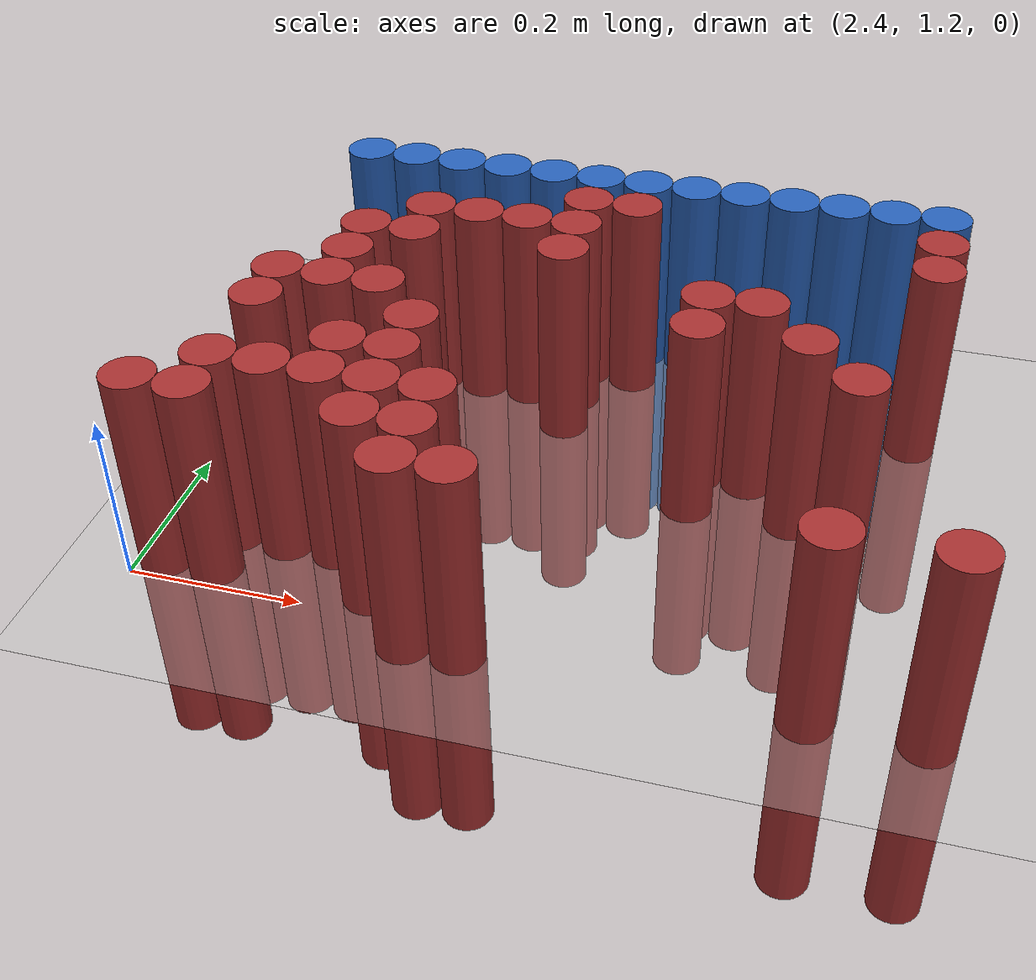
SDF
<sdf version="1.6">
 <world name="default">
  <model name="ground_plane">
   <static>1</static>
   <link name="link">
    <collision name="collision">
     <geometry><plane><normal>0 0 1</normal><size>100 100</size></plane></geometry>
     <surface><friction><ode><mu>100</mu><mu2>50</mu2></ode></friction></surface>
    </collision>
    <visual name="visual">
     <cast_shadows>0</cast_shadows>
     <geometry><plane><normal>0 0 1</normal><size>100 100</size></plane></geometry>
     <material>
      <script><uri>file://media/materials/scripts/gazebo.material</uri><name>Gazebo/Grey</name></script>
     </material>
    </visual>
   </link>
  </model>
  <model name="unit_cylinder_102">
   <static>1</static>
   <pose>2.490000 1.770000 0.000000 0.000000 0.000000 0.000000</pose>
   <link name="link">
    <inertial>
     <mass>1</mass>
     <inertia><ixx>0.145833</ixx><ixy>0</ixy><ixz>0</ixz><iyy>0.145833</iyy><iyz>0</iyz><izz>0.125</izz></inertia>
    </inertial>
    <collision name="collision">
     <geometry><cylinder><radius>0.030000</radius><length>0.5</length></cylinder></geometry>
    </collision>
    <visual name="visual">
     <geometry><cylinder><radius>0.030000</radius><length>0.5</length></cylinder></geometry>
     <material>
      <ambient>0.152000 0.379000 0.720000 1</ambient>
      <diffuse>0.152000 0.379000 0.720000 1</diffuse>
     </material>
     <material>
      <script><name>Gazebo/Grey</name><uri>file://media/materials/scripts/gazebo.material</uri></script>
     </material>
    </visual>
   </link>
  </model>
  <model name="unit_cylinder_103">
   <static>1</static>
   <pose>2.550000 1.770000 0.000000 0.000000 0.000000 0.000000</pose>
   <link name="link">
    <inertial>
     <mass>1</mass>
     <inertia><ixx>0.145833</ixx><ixy>0</ixy><ixz>0</ixz><iyy>0.145833</iyy><iyz>0</iyz><izz>0.125</izz></inertia>
    </inertial>
    <collision name="collision">
     <geometry><cylinder><radius>0.030000</radius><length>0.5</length></cylinder></geometry>
    </collision>
    <visual name="visual">
     <geometry><cylinder><radius>0.030000</radius><length>0.5</length></cylinder></geometry>
     <material>
      <ambient>0.152000 0.379000 0.720000 1</ambient>
      <diffuse>0.152000 0.379000 0.720000 1</diffuse>
     </material>
     <material>
      <script><name>Gazebo/Grey</name><uri>file://media/materials/scripts/gazebo.material</uri></script>
     </material>
    </visual>
   </link>
  </model>
  <model name="unit_cylinder_104">
   <static>1</static>
   <pose>2.610000 1.770000 0.000000 0.000000 0.000000 0.000000</pose>
   <link name="link">
    <inertial>
     <mass>1</mass>
     <inertia><ixx>0.145833</ixx><ixy>0</ixy><ixz>0</ixz><iyy>0.145833</iyy><iyz>0</iyz><izz>0.125</izz></inertia>
    </inertial>
    <collision name="collision">
     <geometry><cylinder><radius>0.030000</radius><length>0.5</length></cylinder></geometry>
    </collision>
    <visual name="visual">
     <geometry><cylinder><radius>0.030000</radius><length>0.5</length></cylinder></geometry>
     <material>
      <ambient>0.152000 0.379000 0.720000 1</ambient>
      <diffuse>0.152000 0.379000 0.720000 1</diffuse>
     </material>
     <material>
      <script><name>Gazebo/Grey</name><uri>file://media/materials/scripts/gazebo.material</uri></script>
     </material>
    </visual>
   </link>
  </model>
  <model name="unit_cylinder_105">
   <static>1</static>
   <pose>2.670000 1.770000 0.000000 0.000000 0.000000 0.000000</pose>
   <link name="link">
    <inertial>
     <mass>1</mass>
     <inertia><ixx>0.145833</ixx><ixy>0</ixy><ixz>0</ixz><iyy>0.145833</iyy><iyz>0</iyz><izz>0.125</izz></inertia>
    </inertial>
    <collision name="collision">
     <geometry><cylinder><radius>0.030000</radius><length>0.5</length></cylinder></geometry>
    </collision>
    <visual name="visual">
     <geometry><cylinder><radius>0.030000</radius><length>0.5</length></cylinder></geometry>
     <material>
      <ambient>0.152000 0.379000 0.720000 1</ambient>
      <diffuse>0.152000 0.379000 0.720000 1</diffuse>
     </material>
     <material>
      <script><name>Gazebo/Grey</name><uri>file://media/materials/scripts/gazebo.material</uri></script>
     </material>
    </visual>
   </link>
  </model>
  <model name="unit_cylinder_106">
   <static>1</static>
   <pose>2.730000 1.770000 0.000000 0.000000 0.000000 0.000000</pose>
   <link name="link">
    <inertial>
     <mass>1</mass>
     <inertia><ixx>0.145833</ixx><ixy>0</ixy><ixz>0</ixz><iyy>0.145833</iyy><iyz>0</iyz><izz>0.125</izz></inertia>
    </inertial>
    <collision name="collision">
     <geometry><cylinder><radius>0.030000</radius><length>0.5</length></cylinder></geometry>
    </collision>
    <visual name="visual">
     <geometry><cylinder><radius>0.030000</radius><length>0.5</length></cylinder></geometry>
     <material>
      <ambient>0.152000 0.379000 0.720000 1</ambient>
      <diffuse>0.152000 0.379000 0.720000 1</diffuse>
     </material>
     <material>
      <script><name>Gazebo/Grey</name><uri>file://media/materials/scripts/gazebo.material</uri></script>
     </material>
    </visual>
   </link>
  </model>
  <model name="unit_cylinder_107">
   <static>1</static>
   <pose>2.790000 1.770000 0.000000 0.000000 0.000000 0.000000</pose>
   <link name="link">
    <inertial>
     <mass>1</mass>
     <inertia><ixx>0.145833</ixx><ixy>0</ixy><ixz>0</ixz><iyy>0.145833</iyy><iyz>0</iyz><izz>0.125</izz></inertia>
    </inertial>
    <collision name="collision">
     <geometry><cylinder><radius>0.030000</radius><length>0.5</length></cylinder></geometry>
    </collision>
    <visual name="visual">
     <geometry><cylinder><radius>0.030000</radius><length>0.5</length></cylinder></geometry>
     <material>
      <ambient>0.152000 0.379000 0.720000 1</ambient>
      <diffuse>0.152000 0.379000 0.720000 1</diffuse>
     </material>
     <material>
      <script><name>Gazebo/Grey</name><uri>file://media/materials/scripts/gazebo.material</uri></script>
     </material>
    </visual>
   </link>
  </model>
  <model name="unit_cylinder_108">
   <static>1</static>
   <pose>2.850000 1.770000 0.000000 0.000000 0.000000 0.000000</pose>
   <link name="link">
    <inertial>
     <mass>1</mass>
     <inertia><ixx>0.145833</ixx><ixy>0</ixy><ixz>0</ixz><iyy>0.145833</iyy><iyz>0</iyz><izz>0.125</izz></inertia>
    </inertial>
    <collision name="collision">
     <geometry><cylinder><radius>0.030000</radius><length>0.5</length></cylinder></geometry>
    </collision>
    <visual name="visual">
     <geometry><cylinder><radius>0.030000</radius><length>0.5</length></cylinder></geometry>
     <material>
      <ambient>0.152000 0.379000 0.720000 1</ambient>
      <diffuse>0.152000 0.379000 0.720000 1</diffuse>
     </material>
     <material>
      <script><name>Gazebo/Grey</name><uri>file://media/materials/scripts/gazebo.material</uri></script>
     </material>
    </visual>
   </link>
  </model>
  <model name="unit_cylinder_109">
   <static>1</static>
   <pose>2.910000 1.770000 0.000000 0.000000 0.000000 0.000000</pose>
   <link name="link">
    <inertial>
     <mass>1</mass>
     <inertia><ixx>0.145833</ixx><ixy>0</ixy><ixz>0</ixz><iyy>0.145833</iyy><iyz>0</iyz><izz>0.125</izz></inertia>
    </inertial>
    <collision name="collision">
     <geometry><cylinder><radius>0.030000</radius><length>0.5</length></cylinder></geometry>
    </collision>
    <visual name="visual">
     <geometry><cylinder><radius>0.030000</radius><length>0.5</length></cylinder></geometry>
     <material>
      <ambient>0.152000 0.379000 0.720000 1</ambient>
      <diffuse>0.152000 0.379000 0.720000 1</diffuse>
     </material>
     <material>
      <script><name>Gazebo/Grey</name><uri>file://media/materials/scripts/gazebo.material</uri></script>
     </material>
    </visual>
   </link>
  </model>
  <model name="unit_cylinder_110">
   <static>1</static>
   <pose>2.970000 1.770000 0.000000 0.000000 0.000000 0.000000</pose>
   <link name="link">
    <inertial>
     <mass>1</mass>
     <inertia><ixx>0.145833</ixx><ixy>0</ixy><ixz>0</ixz><iyy>0.145833</iyy><iyz>0</iyz><izz>0.125</izz></inertia>
    </inertial>
    <collision name="collision">
     <geometry><cylinder><radius>0.030000</radius><length>0.5</length></cylinder></geometry>
    </collision>
    <visual name="visual">
     <geometry><cylinder><radius>0.030000</radius><length>0.5</length></cylinder></geometry>
     <material>
      <ambient>0.152000 0.379000 0.720000 1</ambient>
      <diffuse>0.152000 0.379000 0.720000 1</diffuse>
     </material>
     <material>
      <script><name>Gazebo/Grey</name><uri>file://media/materials/scripts/gazebo.material</uri></script>
     </material>
    </visual>
   </link>
  </model>
  <model name="unit_cylinder_111">
   <static>1</static>
   <pose>3.030000 1.770000 0.000000 0.000000 0.000000 0.000000</pose>
   <link name="link">
    <inertial>
     <mass>1</mass>
     <inertia><ixx>0.145833</ixx><ixy>0</ixy><ixz>0</ixz><iyy>0.145833</iyy><iyz>0</iyz><izz>0.125</izz></inertia>
    </inertial>
    <collision name="collision">
     <geometry><cylinder><radius>0.030000</radius><length>0.5</length></cylinder></geometry>
    </collision>
    <visual name="visual">
     <geometry><cylinder><radius>0.030000</radius><length>0.5</length></cylinder></geometry>
     <material>
      <ambient>0.152000 0.379000 0.720000 1</ambient>
      <diffuse>0.152000 0.379000 0.720000 1</diffuse>
     </material>
     <material>
      <script><name>Gazebo/Grey</name><uri>file://media/materials/scripts/gazebo.material</uri></script>
     </material>
    </visual>
   </link>
  </model>
  <model name="unit_cylinder_112">
   <static>1</static>
   <pose>3.090000 1.770000 0.000000 0.000000 0.000000 0.000000</pose>
   <link name="link">
    <inertial>
     <mass>1</mass>
     <inertia><ixx>0.145833</ixx><ixy>0</ixy><ixz>0</ixz><iyy>0.145833</iyy><iyz>0</iyz><izz>0.125</izz></inertia>
    </inertial>
    <collision name="collision">
     <geometry><cylinder><radius>0.030000</radius><length>0.5</length></cylinder></geometry>
    </collision>
    <visual name="visual">
     <geometry><cylinder><radius>0.030000</radius><length>0.5</length></cylinder></geometry>
     <material>
      <ambient>0.152000 0.379000 0.720000 1</ambient>
      <diffuse>0.152000 0.379000 0.720000 1</diffuse>
     </material>
     <material>
      <script><name>Gazebo/Grey</name><uri>file://media/materials/scripts/gazebo.material</uri></script>
     </material>
    </visual>
   </link>
  </model>
  <model name="unit_cylinder_113">
   <static>1</static>
   <pose>3.150000 1.770000 0.000000 0.000000 0.000000 0.000000</pose>
   <link name="link">
    <inertial>
     <mass>1</mass>
     <inertia><ixx>0.145833</ixx><ixy>0</ixy><ixz>0</ixz><iyy>0.145833</iyy><iyz>0</iyz><izz>0.125</izz></inertia>
    </inertial>
    <collision name="collision">
     <geometry><cylinder><radius>0.030000</radius><length>0.5</length></cylinder></geometry>
    </collision>
    <visual name="visual">
     <geometry><cylinder><radius>0.030000</radius><length>0.5</length></cylinder></geometry>
     <material>
      <ambient>0.152000 0.379000 0.720000 1</ambient>
      <diffuse>0.152000 0.379000 0.720000 1</diffuse>
     </material>
     <material>
      <script><name>Gazebo/Grey</name><uri>file://media/materials/scripts/gazebo.material</uri></script>
     </material>
    </visual>
   </link>
  </model>
  <model name="unit_cylinder_114">
   <static>1</static>
   <pose>3.210000 1.770000 0.000000 0.000000 0.000000 0.000000</pose>
   <link name="link">
    <inertial>
     <mass>1</mass>
     <inertia><ixx>0.145833</ixx><ixy>0</ixy><ixz>0</ixz><iyy>0.145833</iyy><iyz>0</iyz><izz>0.125</izz></inertia>
    </inertial>
    <collision name="collision">
     <geometry><cylinder><radius>0.030000</radius><length>0.5</length></cylinder></geometry>
    </collision>
    <visual name="visual">
     <geometry><cylinder><radius>0.030000</radius><length>0.5</length></cylinder></geometry>
     <material>
      <ambient>0.152000 0.379000 0.720000 1</ambient>
      <diffuse>0.152000 0.379000 0.720000 1</diffuse>
     </material>
     <material>
      <script><name>Gazebo/Grey</name><uri>file://media/materials/scripts/gazebo.material</uri></script>
     </material>
    </visual>
   </link>
  </model>
  <model name="unit_cylinder_130">
   <static>1</static>
   <pose>2.790000 1.710000 0.000000 0.000000 0.000000 0.000000</pose>
   <link name="link">
    <inertial>
     <mass>1</mass>
     <inertia><ixx>0.145833</ixx><ixy>0</ixy><ixz>0</ixz><iyy>0.145833</iyy><iyz>0</iyz><izz>0.125</izz></inertia>
    </inertial>
    <collision name="collision">
     <geometry><cylinder><radius>0.030000</radius><length>0.5</length></cylinder></geometry>
    </collision>
    <visual name="visual">
     <geometry><cylinder><radius>0.030000</radius><length>0.5</length></cylinder></geometry>
     <material>
      <ambient>0.648000 0.192000 0.192000 1</ambient>
      <diffuse>0.648000 0.192000 0.192000 1</diffuse>
     </material>
     <material>
      <script><name>Gazebo/Grey</name><uri>file://media/materials/scripts/gazebo.material</uri></script>
     </material>
    </visual>
   </link>
  </model>
  <model name="unit_cylinder_131">
   <static>1</static>
   <pose>2.850000 1.710000 0.000000 0.000000 0.000000 0.000000</pose>
   <link name="link">
    <inertial>
     <mass>1</mass>
     <inertia><ixx>0.145833</ixx><ixy>0</ixy><ixz>0</ixz><iyy>0.145833</iyy><iyz>0</iyz><izz>0.125</izz></inertia>
    </inertial>
    <collision name="collision">
     <geometry><cylinder><radius>0.030000</radius><length>0.5</length></cylinder></geometry>
    </collision>
    <visual name="visual">
     <geometry><cylinder><radius>0.030000</radius><length>0.5</length></cylinder></geometry>
     <material>
      <ambient>0.648000 0.192000 0.192000 1</ambient>
      <diffuse>0.648000 0.192000 0.192000 1</diffuse>
     </material>
     <material>
      <script><name>Gazebo/Grey</name><uri>file://media/materials/scripts/gazebo.material</uri></script>
     </material>
    </visual>
   </link>
  </model>
  <model name="unit_cylinder_132">
   <static>1</static>
   <pose>3.210000 1.710000 0.000000 0.000000 0.000000 0.000000</pose>
   <link name="link">
    <inertial>
     <mass>1</mass>
     <inertia><ixx>0.145833</ixx><ixy>0</ixy><ixz>0</ixz><iyy>0.145833</iyy><iyz>0</iyz><izz>0.125</izz></inertia>
    </inertial>
    <collision name="collision">
     <geometry><cylinder><radius>0.030000</radius><length>0.5</length></cylinder></geometry>
    </collision>
    <visual name="visual">
     <geometry><cylinder><radius>0.030000</radius><length>0.5</length></cylinder></geometry>
     <material>
      <ambient>0.648000 0.192000 0.192000 1</ambient>
      <diffuse>0.648000 0.192000 0.192000 1</diffuse>
     </material>
     <material>
      <script><name>Gazebo/Grey</name><uri>file://media/materials/scripts/gazebo.material</uri></script>
     </material>
    </visual>
   </link>
  </model>
  <model name="unit_cylinder_138">
   <static>1</static>
   <pose>2.610000 1.650000 0.000000 0.000000 0.000000 0.000000</pose>
   <link name="link">
    <inertial>
     <mass>1</mass>
     <inertia><ixx>0.145833</ixx><ixy>0</ixy><ixz>0</ixz><iyy>0.145833</iyy><iyz>0</iyz><izz>0.125</izz></inertia>
    </inertial>
    <collision name="collision">
     <geometry><cylinder><radius>0.030000</radius><length>0.5</length></cylinder></geometry>
    </collision>
    <visual name="visual">
     <geometry><cylinder><radius>0.030000</radius><length>0.5</length></cylinder></geometry>
     <material>
      <ambient>0.648000 0.192000 0.192000 1</ambient>
      <diffuse>0.648000 0.192000 0.192000 1</diffuse>
     </material>
     <material>
      <script><name>Gazebo/Grey</name><uri>file://media/materials/scripts/gazebo.material</uri></script>
     </material>
    </visual>
   </link>
  </model>
  <model name="unit_cylinder_139">
   <static>1</static>
   <pose>2.670000 1.650000 0.000000 0.000000 0.000000 0.000000</pose>
   <link name="link">
    <inertial>
     <mass>1</mass>
     <inertia><ixx>0.145833</ixx><ixy>0</ixy><ixz>0</ixz><iyy>0.145833</iyy><iyz>0</iyz><izz>0.125</izz></inertia>
    </inertial>
    <collision name="collision">
     <geometry><cylinder><radius>0.030000</radius><length>0.5</length></cylinder></geometry>
    </collision>
    <visual name="visual">
     <geometry><cylinder><radius>0.030000</radius><length>0.5</length></cylinder></geometry>
     <material>
      <ambient>0.648000 0.192000 0.192000 1</ambient>
      <diffuse>0.648000 0.192000 0.192000 1</diffuse>
     </material>
     <material>
      <script><name>Gazebo/Grey</name><uri>file://media/materials/scripts/gazebo.material</uri></script>
     </material>
    </visual>
   </link>
  </model>
  <model name="unit_cylinder_140">
   <static>1</static>
   <pose>2.730000 1.650000 0.000000 0.000000 0.000000 0.000000</pose>
   <link name="link">
    <inertial>
     <mass>1</mass>
     <inertia><ixx>0.145833</ixx><ixy>0</ixy><ixz>0</ixz><iyy>0.145833</iyy><iyz>0</iyz><izz>0.125</izz></inertia>
    </inertial>
    <collision name="collision">
     <geometry><cylinder><radius>0.030000</radius><length>0.5</length></cylinder></geometry>
    </collision>
    <visual name="visual">
     <geometry><cylinder><radius>0.030000</radius><length>0.5</length></cylinder></geometry>
     <material>
      <ambient>0.648000 0.192000 0.192000 1</ambient>
      <diffuse>0.648000 0.192000 0.192000 1</diffuse>
     </material>
     <material>
      <script><name>Gazebo/Grey</name><uri>file://media/materials/scripts/gazebo.material</uri></script>
     </material>
    </visual>
   </link>
  </model>
  <model name="unit_cylinder_141">
   <static>1</static>
   <pose>2.790000 1.650000 0.000000 0.000000 0.000000 0.000000</pose>
   <link name="link">
    <inertial>
     <mass>1</mass>
     <inertia><ixx>0.145833</ixx><ixy>0</ixy><ixz>0</ixz><iyy>0.145833</iyy><iyz>0</iyz><izz>0.125</izz></inertia>
    </inertial>
    <collision name="collision">
     <geometry><cylinder><radius>0.030000</radius><length>0.5</length></cylinder></geometry>
    </collision>
    <visual name="visual">
     <geometry><cylinder><radius>0.030000</radius><length>0.5</length></cylinder></geometry>
     <material>
      <ambient>0.648000 0.192000 0.192000 1</ambient>
      <diffuse>0.648000 0.192000 0.192000 1</diffuse>
     </material>
     <material>
      <script><name>Gazebo/Grey</name><uri>file://media/materials/scripts/gazebo.material</uri></script>
     </material>
    </visual>
   </link>
  </model>
  <model name="unit_cylinder_142">
   <static>1</static>
   <pose>3.210000 1.650000 0.000000 0.000000 0.000000 0.000000</pose>
   <link name="link">
    <inertial>
     <mass>1</mass>
     <inertia><ixx>0.145833</ixx><ixy>0</ixy><ixz>0</ixz><iyy>0.145833</iyy><iyz>0</iyz><izz>0.125</izz></inertia>
    </inertial>
    <collision name="collision">
     <geometry><cylinder><radius>0.030000</radius><length>0.5</length></cylinder></geometry>
    </collision>
    <visual name="visual">
     <geometry><cylinder><radius>0.030000</radius><length>0.5</length></cylinder></geometry>
     <material>
      <ambient>0.648000 0.192000 0.192000 1</ambient>
      <diffuse>0.648000 0.192000 0.192000 1</diffuse>
     </material>
     <material>
      <script><name>Gazebo/Grey</name><uri>file://media/materials/scripts/gazebo.material</uri></script>
     </material>
    </visual>
   </link>
  </model>
  <model name="unit_cylinder_147">
   <static>1</static>
   <pose>2.550000 1.590000 0.000000 0.000000 0.000000 0.000000</pose>
   <link name="link">
    <inertial>
     <mass>1</mass>
     <inertia><ixx>0.145833</ixx><ixy>0</ixy><ixz>0</ixz><iyy>0.145833</iyy><iyz>0</iyz><izz>0.125</izz></inertia>
    </inertial>
    <collision name="collision">
     <geometry><cylinder><radius>0.030000</radius><length>0.5</length></cylinder></geometry>
    </collision>
    <visual name="visual">
     <geometry><cylinder><radius>0.030000</radius><length>0.5</length></cylinder></geometry>
     <material>
      <ambient>0.648000 0.192000 0.192000 1</ambient>
      <diffuse>0.648000 0.192000 0.192000 1</diffuse>
     </material>
     <material>
      <script><name>Gazebo/Grey</name><uri>file://media/materials/scripts/gazebo.material</uri></script>
     </material>
    </visual>
   </link>
  </model>
  <model name="unit_cylinder_148">
   <static>1</static>
   <pose>2.610000 1.590000 0.000000 0.000000 0.000000 0.000000</pose>
   <link name="link">
    <inertial>
     <mass>1</mass>
     <inertia><ixx>0.145833</ixx><ixy>0</ixy><ixz>0</ixz><iyy>0.145833</iyy><iyz>0</iyz><izz>0.125</izz></inertia>
    </inertial>
    <collision name="collision">
     <geometry><cylinder><radius>0.030000</radius><length>0.5</length></cylinder></geometry>
    </collision>
    <visual name="visual">
     <geometry><cylinder><radius>0.030000</radius><length>0.5</length></cylinder></geometry>
     <material>
      <ambient>0.648000 0.192000 0.192000 1</ambient>
      <diffuse>0.648000 0.192000 0.192000 1</diffuse>
     </material>
     <material>
      <script><name>Gazebo/Grey</name><uri>file://media/materials/scripts/gazebo.material</uri></script>
     </material>
    </visual>
   </link>
  </model>
  <model name="unit_cylinder_149">
   <static>1</static>
   <pose>2.790000 1.590000 0.000000 0.000000 0.000000 0.000000</pose>
   <link name="link">
    <inertial>
     <mass>1</mass>
     <inertia><ixx>0.145833</ixx><ixy>0</ixy><ixz>0</ixz><iyy>0.145833</iyy><iyz>0</iyz><izz>0.125</izz></inertia>
    </inertial>
    <collision name="collision">
     <geometry><cylinder><radius>0.030000</radius><length>0.5</length></cylinder></geometry>
    </collision>
    <visual name="visual">
     <geometry><cylinder><radius>0.030000</radius><length>0.5</length></cylinder></geometry>
     <material>
      <ambient>0.648000 0.192000 0.192000 1</ambient>
      <diffuse>0.648000 0.192000 0.192000 1</diffuse>
     </material>
     <material>
      <script><name>Gazebo/Grey</name><uri>file://media/materials/scripts/gazebo.material</uri></script>
     </material>
    </visual>
   </link>
  </model>
  <model name="unit_cylinder_154">
   <static>1</static>
   <pose>2.550000 1.530000 0.000000 0.000000 0.000000 0.000000</pose>
   <link name="link">
    <inertial>
     <mass>1</mass>
     <inertia><ixx>0.145833</ixx><ixy>0</ixy><ixz>0</ixz><iyy>0.145833</iyy><iyz>0</iyz><izz>0.125</izz></inertia>
    </inertial>
    <collision name="collision">
     <geometry><cylinder><radius>0.030000</radius><length>0.5</length></cylinder></geometry>
    </collision>
    <visual name="visual">
     <geometry><cylinder><radius>0.030000</radius><length>0.5</length></cylinder></geometry>
     <material>
      <ambient>0.648000 0.192000 0.192000 1</ambient>
      <diffuse>0.648000 0.192000 0.192000 1</diffuse>
     </material>
     <material>
      <script><name>Gazebo/Grey</name><uri>file://media/materials/scripts/gazebo.material</uri></script>
     </material>
    </visual>
   </link>
  </model>
  <model name="unit_cylinder_155">
   <static>1</static>
   <pose>2.970000 1.530000 0.000000 0.000000 0.000000 0.000000</pose>
   <link name="link">
    <inertial>
     <mass>1</mass>
     <inertia><ixx>0.145833</ixx><ixy>0</ixy><ixz>0</ixz><iyy>0.145833</iyy><iyz>0</iyz><izz>0.125</izz></inertia>
    </inertial>
    <collision name="collision">
     <geometry><cylinder><radius>0.030000</radius><length>0.5</length></cylinder></geometry>
    </collision>
    <visual name="visual">
     <geometry><cylinder><radius>0.030000</radius><length>0.5</length></cylinder></geometry>
     <material>
      <ambient>0.648000 0.192000 0.192000 1</ambient>
      <diffuse>0.648000 0.192000 0.192000 1</diffuse>
     </material>
     <material>
      <script><name>Gazebo/Grey</name><uri>file://media/materials/scripts/gazebo.material</uri></script>
     </material>
    </visual>
   </link>
  </model>
  <model name="unit_cylinder_156">
   <static>1</static>
   <pose>3.030000 1.530000 0.000000 0.000000 0.000000 0.000000</pose>
   <link name="link">
    <inertial>
     <mass>1</mass>
     <inertia><ixx>0.145833</ixx><ixy>0</ixy><ixz>0</ixz><iyy>0.145833</iyy><iyz>0</iyz><izz>0.125</izz></inertia>
    </inertial>
    <collision name="collision">
     <geometry><cylinder><radius>0.030000</radius><length>0.5</length></cylinder></geometry>
    </collision>
    <visual name="visual">
     <geometry><cylinder><radius>0.030000</radius><length>0.5</length></cylinder></geometry>
     <material>
      <ambient>0.648000 0.192000 0.192000 1</ambient>
      <diffuse>0.648000 0.192000 0.192000 1</diffuse>
     </material>
     <material>
      <script><name>Gazebo/Grey</name><uri>file://media/materials/scripts/gazebo.material</uri></script>
     </material>
    </visual>
   </link>
  </model>
  <model name="unit_cylinder_162">
   <static>1</static>
   <pose>2.490000 1.470000 0.000000 0.000000 0.000000 0.000000</pose>
   <link name="link">
    <inertial>
     <mass>1</mass>
     <inertia><ixx>0.145833</ixx><ixy>0</ixy><ixz>0</ixz><iyy>0.145833</iyy><iyz>0</iyz><izz>0.125</izz></inertia>
    </inertial>
    <collision name="collision">
     <geometry><cylinder><radius>0.030000</radius><length>0.5</length></cylinder></geometry>
    </collision>
    <visual name="visual">
     <geometry><cylinder><radius>0.030000</radius><length>0.5</length></cylinder></geometry>
     <material>
      <ambient>0.648000 0.192000 0.192000 1</ambient>
      <diffuse>0.648000 0.192000 0.192000 1</diffuse>
     </material>
     <material>
      <script><name>Gazebo/Grey</name><uri>file://media/materials/scripts/gazebo.material</uri></script>
     </material>
    </visual>
   </link>
  </model>
  <model name="unit_cylinder_163">
   <static>1</static>
   <pose>2.550000 1.470000 0.000000 0.000000 0.000000 0.000000</pose>
   <link name="link">
    <inertial>
     <mass>1</mass>
     <inertia><ixx>0.145833</ixx><ixy>0</ixy><ixz>0</ixz><iyy>0.145833</iyy><iyz>0</iyz><izz>0.125</izz></inertia>
    </inertial>
    <collision name="collision">
     <geometry><cylinder><radius>0.030000</radius><length>0.5</length></cylinder></geometry>
    </collision>
    <visual name="visual">
     <geometry><cylinder><radius>0.030000</radius><length>0.5</length></cylinder></geometry>
     <material>
      <ambient>0.648000 0.192000 0.192000 1</ambient>
      <diffuse>0.648000 0.192000 0.192000 1</diffuse>
     </material>
     <material>
      <script><name>Gazebo/Grey</name><uri>file://media/materials/scripts/gazebo.material</uri></script>
     </material>
    </visual>
   </link>
  </model>
  <model name="unit_cylinder_164">
   <static>1</static>
   <pose>2.610000 1.470000 0.000000 0.000000 0.000000 0.000000</pose>
   <link name="link">
    <inertial>
     <mass>1</mass>
     <inertia><ixx>0.145833</ixx><ixy>0</ixy><ixz>0</ixz><iyy>0.145833</iyy><iyz>0</iyz><izz>0.125</izz></inertia>
    </inertial>
    <collision name="collision">
     <geometry><cylinder><radius>0.030000</radius><length>0.5</length></cylinder></geometry>
    </collision>
    <visual name="visual">
     <geometry><cylinder><radius>0.030000</radius><length>0.5</length></cylinder></geometry>
     <material>
      <ambient>0.648000 0.192000 0.192000 1</ambient>
      <diffuse>0.648000 0.192000 0.192000 1</diffuse>
     </material>
     <material>
      <script><name>Gazebo/Grey</name><uri>file://media/materials/scripts/gazebo.material</uri></script>
     </material>
    </visual>
   </link>
  </model>
  <model name="unit_cylinder_165">
   <static>1</static>
   <pose>2.970000 1.470000 0.000000 0.000000 0.000000 0.000000</pose>
   <link name="link">
    <inertial>
     <mass>1</mass>
     <inertia><ixx>0.145833</ixx><ixy>0</ixy><ixz>0</ixz><iyy>0.145833</iyy><iyz>0</iyz><izz>0.125</izz></inertia>
    </inertial>
    <collision name="collision">
     <geometry><cylinder><radius>0.030000</radius><length>0.5</length></cylinder></geometry>
    </collision>
    <visual name="visual">
     <geometry><cylinder><radius>0.030000</radius><length>0.5</length></cylinder></geometry>
     <material>
      <ambient>0.648000 0.192000 0.192000 1</ambient>
      <diffuse>0.648000 0.192000 0.192000 1</diffuse>
     </material>
     <material>
      <script><name>Gazebo/Grey</name><uri>file://media/materials/scripts/gazebo.material</uri></script>
     </material>
    </visual>
   </link>
  </model>
  <model name="unit_cylinder_166">
   <static>1</static>
   <pose>3.090000 1.470000 0.000000 0.000000 0.000000 0.000000</pose>
   <link name="link">
    <inertial>
     <mass>1</mass>
     <inertia><ixx>0.145833</ixx><ixy>0</ixy><ixz>0</ixz><iyy>0.145833</iyy><iyz>0</iyz><izz>0.125</izz></inertia>
    </inertial>
    <collision name="collision">
     <geometry><cylinder><radius>0.030000</radius><length>0.5</length></cylinder></geometry>
    </collision>
    <visual name="visual">
     <geometry><cylinder><radius>0.030000</radius><length>0.5</length></cylinder></geometry>
     <material>
      <ambient>0.648000 0.192000 0.192000 1</ambient>
      <diffuse>0.648000 0.192000 0.192000 1</diffuse>
     </material>
     <material>
      <script><name>Gazebo/Grey</name><uri>file://media/materials/scripts/gazebo.material</uri></script>
     </material>
    </visual>
   </link>
  </model>
  <model name="unit_cylinder_181">
   <static>1</static>
   <pose>2.490000 1.410000 0.000000 0.000000 0.000000 0.000000</pose>
   <link name="link">
    <inertial>
     <mass>1</mass>
     <inertia><ixx>0.145833</ixx><ixy>0</ixy><ixz>0</ixz><iyy>0.145833</iyy><iyz>0</iyz><izz>0.125</izz></inertia>
    </inertial>
    <collision name="collision">
     <geometry><cylinder><radius>0.030000</radius><length>0.5</length></cylinder></geometry>
    </collision>
    <visual name="visual">
     <geometry><cylinder><radius>0.030000</radius><length>0.5</length></cylinder></geometry>
     <material>
      <ambient>0.648000 0.192000 0.192000 1</ambient>
      <diffuse>0.648000 0.192000 0.192000 1</diffuse>
     </material>
     <material>
      <script><name>Gazebo/Grey</name><uri>file://media/materials/scripts/gazebo.material</uri></script>
     </material>
    </visual>
   </link>
  </model>
  <model name="unit_cylinder_182">
   <static>1</static>
   <pose>2.670000 1.410000 0.000000 0.000000 0.000000 0.000000</pose>
   <link name="link">
    <inertial>
     <mass>1</mass>
     <inertia><ixx>0.145833</ixx><ixy>0</ixy><ixz>0</ixz><iyy>0.145833</iyy><iyz>0</iyz><izz>0.125</izz></inertia>
    </inertial>
    <collision name="collision">
     <geometry><cylinder><radius>0.030000</radius><length>0.5</length></cylinder></geometry>
    </collision>
    <visual name="visual">
     <geometry><cylinder><radius>0.030000</radius><length>0.5</length></cylinder></geometry>
     <material>
      <ambient>0.648000 0.192000 0.192000 1</ambient>
      <diffuse>0.648000 0.192000 0.192000 1</diffuse>
     </material>
     <material>
      <script><name>Gazebo/Grey</name><uri>file://media/materials/scripts/gazebo.material</uri></script>
     </material>
    </visual>
   </link>
  </model>
  <model name="unit_cylinder_183">
   <static>1</static>
   <pose>3.150000 1.410000 0.000000 0.000000 0.000000 0.000000</pose>
   <link name="link">
    <inertial>
     <mass>1</mass>
     <inertia><ixx>0.145833</ixx><ixy>0</ixy><ixz>0</ixz><iyy>0.145833</iyy><iyz>0</iyz><izz>0.125</izz></inertia>
    </inertial>
    <collision name="collision">
     <geometry><cylinder><radius>0.030000</radius><length>0.5</length></cylinder></geometry>
    </collision>
    <visual name="visual">
     <geometry><cylinder><radius>0.030000</radius><length>0.5</length></cylinder></geometry>
     <material>
      <ambient>0.648000 0.192000 0.192000 1</ambient>
      <diffuse>0.648000 0.192000 0.192000 1</diffuse>
     </material>
     <material>
      <script><name>Gazebo/Grey</name><uri>file://media/materials/scripts/gazebo.material</uri></script>
     </material>
    </visual>
   </link>
  </model>
  <model name="unit_cylinder_193">
   <static>1</static>
   <pose>2.610000 1.350000 0.000000 0.000000 0.000000 0.000000</pose>
   <link name="link">
    <inertial>
     <mass>1</mass>
     <inertia><ixx>0.145833</ixx><ixy>0</ixy><ixz>0</ixz><iyy>0.145833</iyy><iyz>0</iyz><izz>0.125</izz></inertia>
    </inertial>
    <collision name="collision">
     <geometry><cylinder><radius>0.030000</radius><length>0.5</length></cylinder></geometry>
    </collision>
    <visual name="visual">
     <geometry><cylinder><radius>0.030000</radius><length>0.5</length></cylinder></geometry>
     <material>
      <ambient>0.648000 0.192000 0.192000 1</ambient>
      <diffuse>0.648000 0.192000 0.192000 1</diffuse>
     </material>
     <material>
      <script><name>Gazebo/Grey</name><uri>file://media/materials/scripts/gazebo.material</uri></script>
     </material>
    </visual>
   </link>
  </model>
  <model name="unit_cylinder_194">
   <static>1</static>
   <pose>2.670000 1.350000 0.000000 0.000000 0.000000 0.000000</pose>
   <link name="link">
    <inertial>
     <mass>1</mass>
     <inertia><ixx>0.145833</ixx><ixy>0</ixy><ixz>0</ixz><iyy>0.145833</iyy><iyz>0</iyz><izz>0.125</izz></inertia>
    </inertial>
    <collision name="collision">
     <geometry><cylinder><radius>0.030000</radius><length>0.5</length></cylinder></geometry>
    </collision>
    <visual name="visual">
     <geometry><cylinder><radius>0.030000</radius><length>0.5</length></cylinder></geometry>
     <material>
      <ambient>0.648000 0.192000 0.192000 1</ambient>
      <diffuse>0.648000 0.192000 0.192000 1</diffuse>
     </material>
     <material>
      <script><name>Gazebo/Grey</name><uri>file://media/materials/scripts/gazebo.material</uri></script>
     </material>
    </visual>
   </link>
  </model>
  <model name="unit_cylinder_200">
   <static>1</static>
   <pose>2.490000 1.290000 0.000000 0.000000 0.000000 0.000000</pose>
   <link name="link">
    <inertial>
     <mass>1</mass>
     <inertia><ixx>0.145833</ixx><ixy>0</ixy><ixz>0</ixz><iyy>0.145833</iyy><iyz>0</iyz><izz>0.125</izz></inertia>
    </inertial>
    <collision name="collision">
     <geometry><cylinder><radius>0.030000</radius><length>0.5</length></cylinder></geometry>
    </collision>
    <visual name="visual">
     <geometry><cylinder><radius>0.030000</radius><length>0.5</length></cylinder></geometry>
     <material>
      <ambient>0.648000 0.192000 0.192000 1</ambient>
      <diffuse>0.648000 0.192000 0.192000 1</diffuse>
     </material>
     <material>
      <script><name>Gazebo/Grey</name><uri>file://media/materials/scripts/gazebo.material</uri></script>
     </material>
    </visual>
   </link>
  </model>
  <model name="unit_cylinder_201">
   <static>1</static>
   <pose>2.550000 1.290000 0.000000 0.000000 0.000000 0.000000</pose>
   <link name="link">
    <inertial>
     <mass>1</mass>
     <inertia><ixx>0.145833</ixx><ixy>0</ixy><ixz>0</ixz><iyy>0.145833</iyy><iyz>0</iyz><izz>0.125</izz></inertia>
    </inertial>
    <collision name="collision">
     <geometry><cylinder><radius>0.030000</radius><length>0.5</length></cylinder></geometry>
    </collision>
    <visual name="visual">
     <geometry><cylinder><radius>0.030000</radius><length>0.5</length></cylinder></geometry>
     <material>
      <ambient>0.648000 0.192000 0.192000 1</ambient>
      <diffuse>0.648000 0.192000 0.192000 1</diffuse>
     </material>
     <material>
      <script><name>Gazebo/Grey</name><uri>file://media/materials/scripts/gazebo.material</uri></script>
     </material>
    </visual>
   </link>
  </model>
  <model name="unit_cylinder_202">
   <static>1</static>
   <pose>2.610000 1.290000 0.000000 0.000000 0.000000 0.000000</pose>
   <link name="link">
    <inertial>
     <mass>1</mass>
     <inertia><ixx>0.145833</ixx><ixy>0</ixy><ixz>0</ixz><iyy>0.145833</iyy><iyz>0</iyz><izz>0.125</izz></inertia>
    </inertial>
    <collision name="collision">
     <geometry><cylinder><radius>0.030000</radius><length>0.5</length></cylinder></geometry>
    </collision>
    <visual name="visual">
     <geometry><cylinder><radius>0.030000</radius><length>0.5</length></cylinder></geometry>
     <material>
      <ambient>0.648000 0.192000 0.192000 1</ambient>
      <diffuse>0.648000 0.192000 0.192000 1</diffuse>
     </material>
     <material>
      <script><name>Gazebo/Grey</name><uri>file://media/materials/scripts/gazebo.material</uri></script>
     </material>
    </visual>
   </link>
  </model>
  <model name="unit_cylinder_203">
   <static>1</static>
   <pose>2.670000 1.290000 0.000000 0.000000 0.000000 0.000000</pose>
   <link name="link">
    <inertial>
     <mass>1</mass>
     <inertia><ixx>0.145833</ixx><ixy>0</ixy><ixz>0</ixz><iyy>0.145833</iyy><iyz>0</iyz><izz>0.125</izz></inertia>
    </inertial>
    <collision name="collision">
     <geometry><cylinder><radius>0.030000</radius><length>0.5</length></cylinder></geometry>
    </collision>
    <visual name="visual">
     <geometry><cylinder><radius>0.030000</radius><length>0.5</length></cylinder></geometry>
     <material>
      <ambient>0.648000 0.192000 0.192000 1</ambient>
      <diffuse>0.648000 0.192000 0.192000 1</diffuse>
     </material>
     <material>
      <script><name>Gazebo/Grey</name><uri>file://media/materials/scripts/gazebo.material</uri></script>
     </material>
    </visual>
   </link>
  </model>
  <model name="unit_cylinder_204">
   <static>1</static>
   <pose>2.730000 1.290000 0.000000 0.000000 0.000000 0.000000</pose>
   <link name="link">
    <inertial>
     <mass>1</mass>
     <inertia><ixx>0.145833</ixx><ixy>0</ixy><ixz>0</ixz><iyy>0.145833</iyy><iyz>0</iyz><izz>0.125</izz></inertia>
    </inertial>
    <collision name="collision">
     <geometry><cylinder><radius>0.030000</radius><length>0.5</length></cylinder></geometry>
    </collision>
    <visual name="visual">
     <geometry><cylinder><radius>0.030000</radius><length>0.5</length></cylinder></geometry>
     <material>
      <ambient>0.648000 0.192000 0.192000 1</ambient>
      <diffuse>0.648000 0.192000 0.192000 1</diffuse>
     </material>
     <material>
      <script><name>Gazebo/Grey</name><uri>file://media/materials/scripts/gazebo.material</uri></script>
     </material>
    </visual>
   </link>
  </model>
  <model name="unit_cylinder_210">
   <static>1</static>
   <pose>2.430000 1.230000 0.000000 0.000000 0.000000 0.000000</pose>
   <link name="link">
    <inertial>
     <mass>1</mass>
     <inertia><ixx>0.145833</ixx><ixy>0</ixy><ixz>0</ixz><iyy>0.145833</iyy><iyz>0</iyz><izz>0.125</izz></inertia>
    </inertial>
    <collision name="collision">
     <geometry><cylinder><radius>0.030000</radius><length>0.5</length></cylinder></geometry>
    </collision>
    <visual name="visual">
     <geometry><cylinder><radius>0.030000</radius><length>0.5</length></cylinder></geometry>
     <material>
      <ambient>0.648000 0.192000 0.192000 1</ambient>
      <diffuse>0.648000 0.192000 0.192000 1</diffuse>
     </material>
     <material>
      <script><name>Gazebo/Grey</name><uri>file://media/materials/scripts/gazebo.material</uri></script>
     </material>
    </visual>
   </link>
  </model>
  <model name="unit_cylinder_211">
   <static>1</static>
   <pose>2.490000 1.230000 0.000000 0.000000 0.000000 0.000000</pose>
   <link name="link">
    <inertial>
     <mass>1</mass>
     <inertia><ixx>0.145833</ixx><ixy>0</ixy><ixz>0</ixz><iyy>0.145833</iyy><iyz>0</iyz><izz>0.125</izz></inertia>
    </inertial>
    <collision name="collision">
     <geometry><cylinder><radius>0.030000</radius><length>0.5</length></cylinder></geometry>
    </collision>
    <visual name="visual">
     <geometry><cylinder><radius>0.030000</radius><length>0.5</length></cylinder></geometry>
     <material>
      <ambient>0.648000 0.192000 0.192000 1</ambient>
      <diffuse>0.648000 0.192000 0.192000 1</diffuse>
     </material>
     <material>
      <script><name>Gazebo/Grey</name><uri>file://media/materials/scripts/gazebo.material</uri></script>
     </material>
    </visual>
   </link>
  </model>
  <model name="unit_cylinder_212">
   <static>1</static>
   <pose>2.670000 1.230000 0.000000 0.000000 0.000000 0.000000</pose>
   <link name="link">
    <inertial>
     <mass>1</mass>
     <inertia><ixx>0.145833</ixx><ixy>0</ixy><ixz>0</ixz><iyy>0.145833</iyy><iyz>0</iyz><izz>0.125</izz></inertia>
    </inertial>
    <collision name="collision">
     <geometry><cylinder><radius>0.030000</radius><length>0.5</length></cylinder></geometry>
    </collision>
    <visual name="visual">
     <geometry><cylinder><radius>0.030000</radius><length>0.5</length></cylinder></geometry>
     <material>
      <ambient>0.648000 0.192000 0.192000 1</ambient>
      <diffuse>0.648000 0.192000 0.192000 1</diffuse>
     </material>
     <material>
      <script><name>Gazebo/Grey</name><uri>file://media/materials/scripts/gazebo.material</uri></script>
     </material>
    </visual>
   </link>
  </model>
  <model name="unit_cylinder_213">
   <static>1</static>
   <pose>2.730000 1.230000 0.000000 0.000000 0.000000 0.000000</pose>
   <link name="link">
    <inertial>
     <mass>1</mass>
     <inertia><ixx>0.145833</ixx><ixy>0</ixy><ixz>0</ixz><iyy>0.145833</iyy><iyz>0</iyz><izz>0.125</izz></inertia>
    </inertial>
    <collision name="collision">
     <geometry><cylinder><radius>0.030000</radius><length>0.5</length></cylinder></geometry>
    </collision>
    <visual name="visual">
     <geometry><cylinder><radius>0.030000</radius><length>0.5</length></cylinder></geometry>
     <material>
      <ambient>0.648000 0.192000 0.192000 1</ambient>
      <diffuse>0.648000 0.192000 0.192000 1</diffuse>
     </material>
     <material>
      <script><name>Gazebo/Grey</name><uri>file://media/materials/scripts/gazebo.material</uri></script>
     </material>
    </visual>
   </link>
  </model>
  <model name="unit_cylinder_218">
   <static>1</static>
   <pose>2.730000 1.170000 0.000000 0.000000 0.000000 0.000000</pose>
   <link name="link">
    <inertial>
     <mass>1</mass>
     <inertia><ixx>0.145833</ixx><ixy>0</ixy><ixz>0</ixz><iyy>0.145833</iyy><iyz>0</iyz><izz>0.125</izz></inertia>
    </inertial>
    <collision name="collision">
     <geometry><cylinder><radius>0.030000</radius><length>0.5</length></cylinder></geometry>
    </collision>
    <visual name="visual">
     <geometry><cylinder><radius>0.030000</radius><length>0.5</length></cylinder></geometry>
     <material>
      <ambient>0.648000 0.192000 0.192000 1</ambient>
      <diffuse>0.648000 0.192000 0.192000 1</diffuse>
     </material>
     <material>
      <script><name>Gazebo/Grey</name><uri>file://media/materials/scripts/gazebo.material</uri></script>
     </material>
    </visual>
   </link>
  </model>
  <model name="unit_cylinder_219">
   <static>1</static>
   <pose>2.790000 1.170000 0.000000 0.000000 0.000000 0.000000</pose>
   <link name="link">
    <inertial>
     <mass>1</mass>
     <inertia><ixx>0.145833</ixx><ixy>0</ixy><ixz>0</ixz><iyy>0.145833</iyy><iyz>0</iyz><izz>0.125</izz></inertia>
    </inertial>
    <collision name="collision">
     <geometry><cylinder><radius>0.030000</radius><length>0.5</length></cylinder></geometry>
    </collision>
    <visual name="visual">
     <geometry><cylinder><radius>0.030000</radius><length>0.5</length></cylinder></geometry>
     <material>
      <ambient>0.648000 0.192000 0.192000 1</ambient>
      <diffuse>0.648000 0.192000 0.192000 1</diffuse>
     </material>
     <material>
      <script><name>Gazebo/Grey</name><uri>file://media/materials/scripts/gazebo.material</uri></script>
     </material>
    </visual>
   </link>
  </model>
  <model name="unit_cylinder_220">
   <static>1</static>
   <pose>3.150000 1.170000 0.000000 0.000000 0.000000 0.000000</pose>
   <link name="link">
    <inertial>
     <mass>1</mass>
     <inertia><ixx>0.145833</ixx><ixy>0</ixy><ixz>0</ixz><iyy>0.145833</iyy><iyz>0</iyz><izz>0.125</izz></inertia>
    </inertial>
    <collision name="collision">
     <geometry><cylinder><radius>0.030000</radius><length>0.5</length></cylinder></geometry>
    </collision>
    <visual name="visual">
     <geometry><cylinder><radius>0.030000</radius><length>0.5</length></cylinder></geometry>
     <material>
      <ambient>0.648000 0.192000 0.192000 1</ambient>
      <diffuse>0.648000 0.192000 0.192000 1</diffuse>
     </material>
     <material>
      <script><name>Gazebo/Grey</name><uri>file://media/materials/scripts/gazebo.material</uri></script>
     </material>
    </visual>
   </link>
  </model>
  <model name="unit_cylinder_221">
   <static>1</static>
   <pose>3.270000 1.170000 0.000000 0.000000 0.000000 0.000000</pose>
   <link name="link">
    <inertial>
     <mass>1</mass>
     <inertia><ixx>0.145833</ixx><ixy>0</ixy><ixz>0</ixz><iyy>0.145833</iyy><iyz>0</iyz><izz>0.125</izz></inertia>
    </inertial>
    <collision name="collision">
     <geometry><cylinder><radius>0.030000</radius><length>0.5</length></cylinder></geometry>
    </collision>
    <visual name="visual">
     <geometry><cylinder><radius>0.030000</radius><length>0.5</length></cylinder></geometry>
     <material>
      <ambient>0.648000 0.192000 0.192000 1</ambient>
      <diffuse>0.648000 0.192000 0.192000 1</diffuse>
     </material>
     <material>
      <script><name>Gazebo/Grey</name><uri>file://media/materials/scripts/gazebo.material</uri></script>
     </material>
    </visual>
   </link>
  </model>
 </world>
</sdf>
